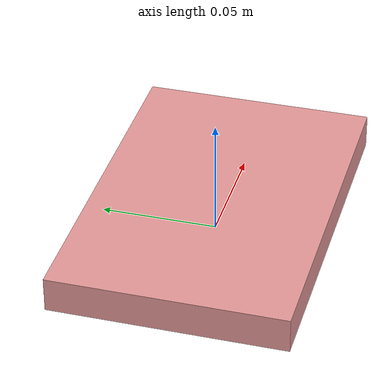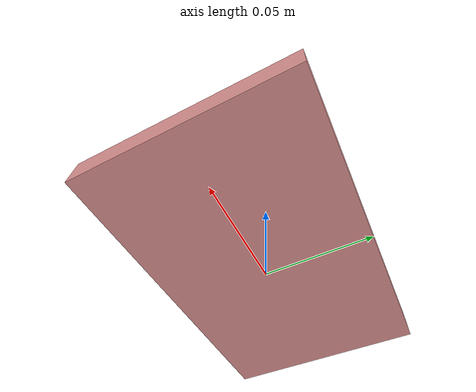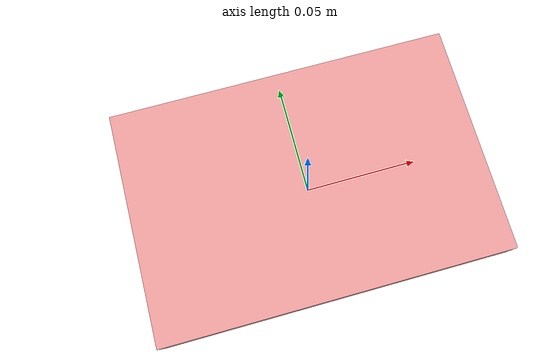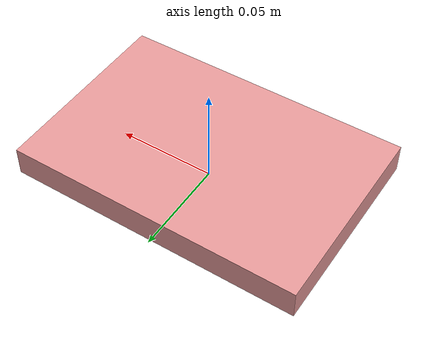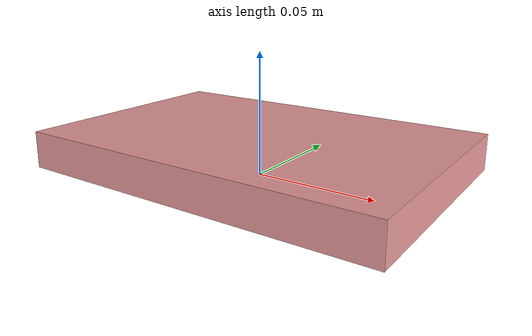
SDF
<?xml version="1.6"?>
<sdf version="1.6">
  <model name="deformable_skin">
    <static>true</static>
    <pose>0 0 0.01 0 0 0</pose>
    <link name="skin_link">
      <inertial>
        <mass>0.02</mass>
        <inertia>
          <ixx>1e-4</ixx><iyy>1e-4</iyy><izz>1e-4</izz>
          <ixy>0</ixy><ixz>0</ixz><iyz>0</iyz>
        </inertia>
      </inertial>
      <visual name="skin_visual">
        <geometry><box><size>0.15 0.1 0.015</size></box></geometry>
        <material><ambient>0.9 0.6 0.6 1</ambient></material>
      </visual>
      <collision name="skin_collision">
        <geometry><box><size>0.15 0.1 0.015</size></box></geometry>
      </collision>
    </link>
  </model>
</sdf>
